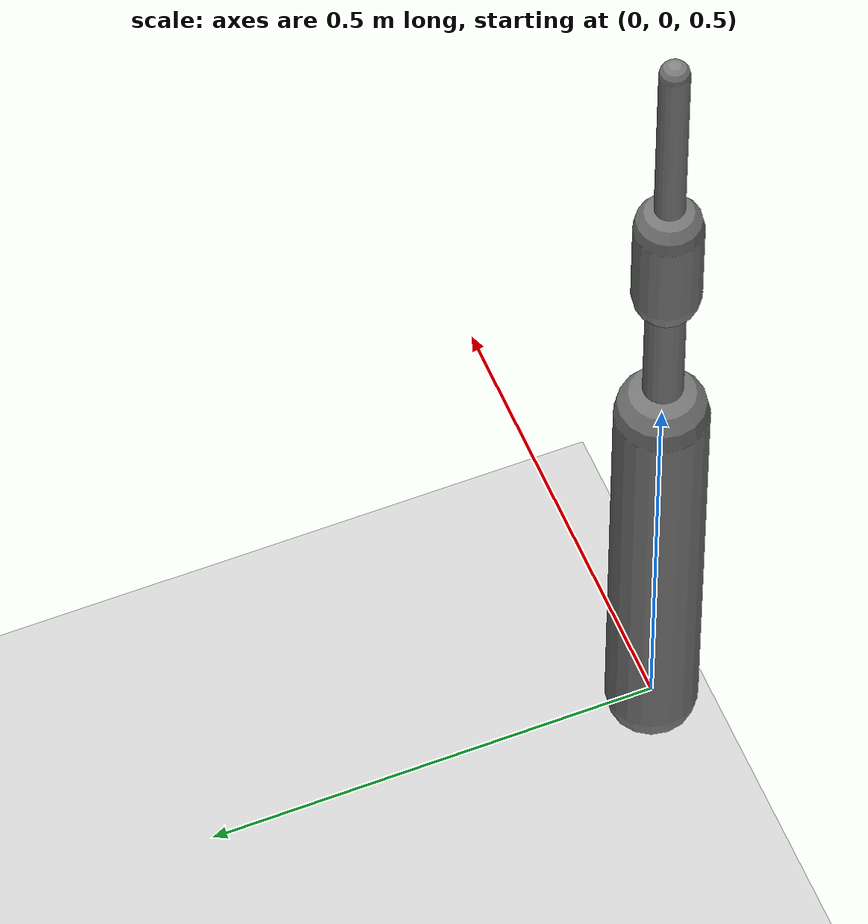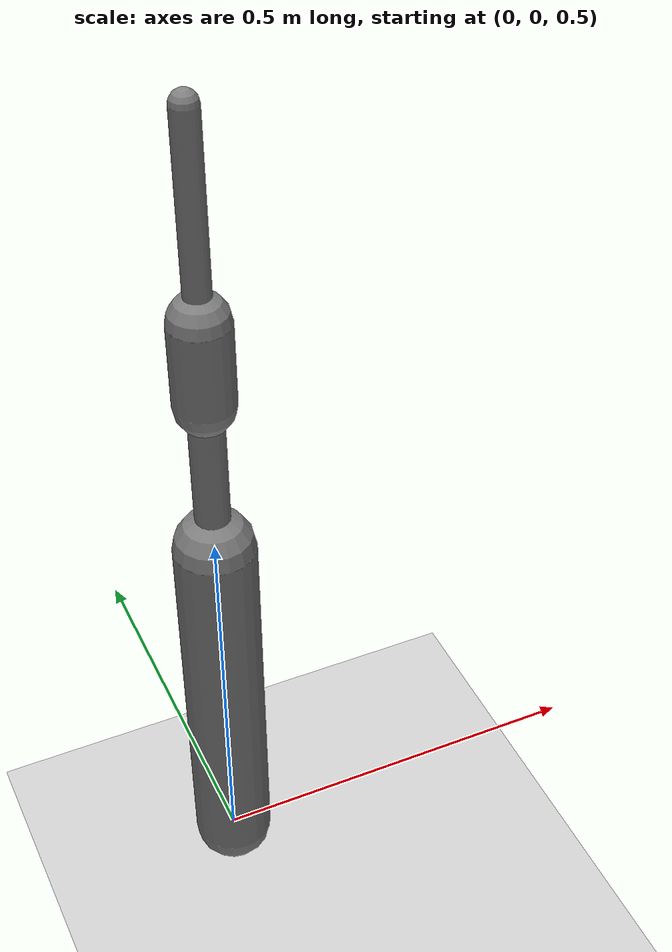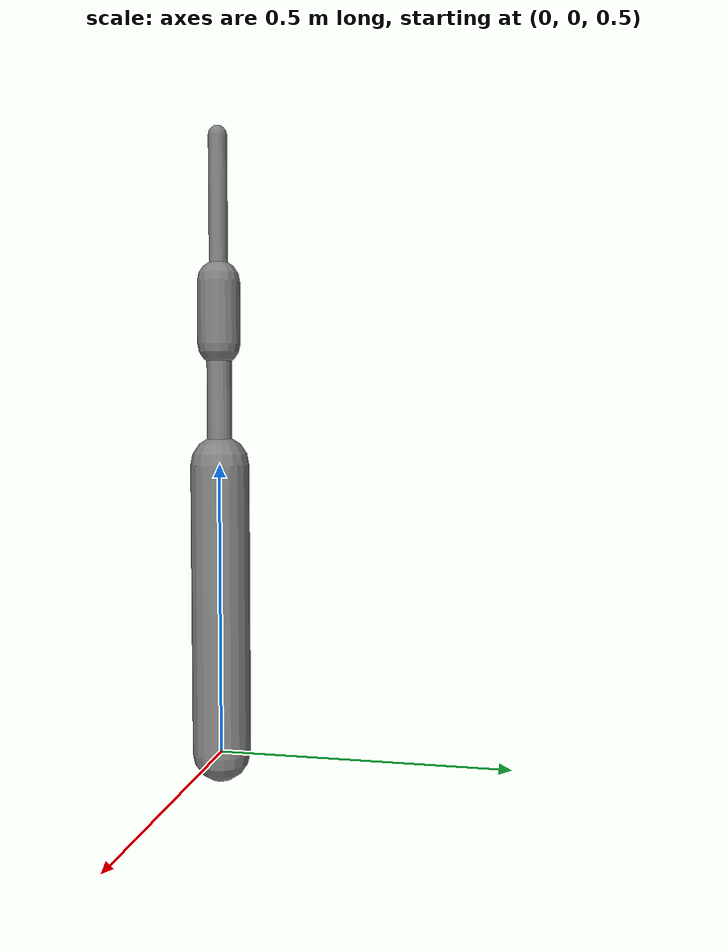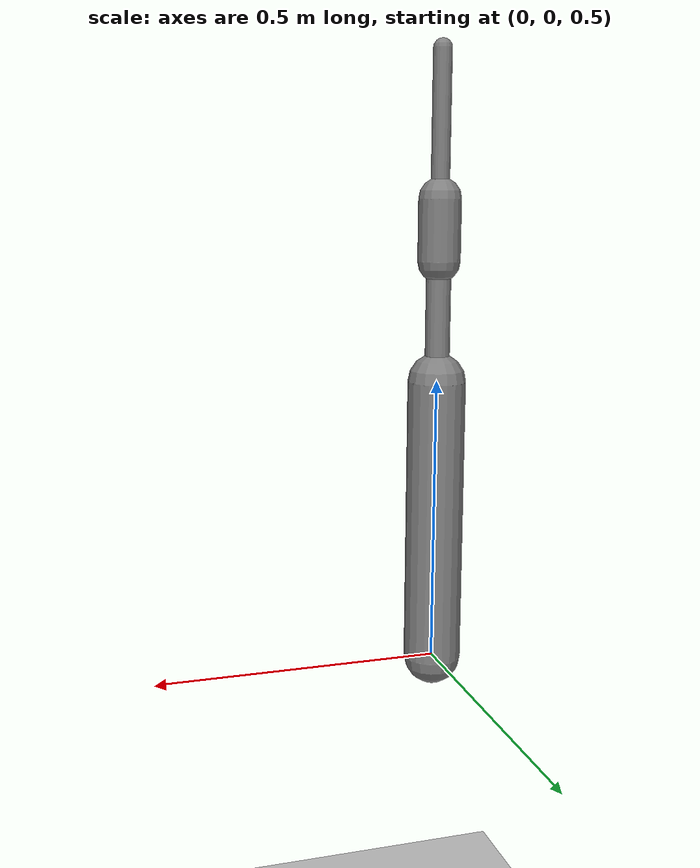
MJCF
<?xml version='1.0' encoding='UTF-8'?>
<mujoco model="RobotModel">
  <option gravity="0 0 -9.81" timestep="0.002" solver="CG" iterations="500" integrator="Euler"/>
  <worldbody>
    <geom name="Floor" type="plane" size="10 10 0.1" pos="0 0 0" rgba="0.8 0.8 0.8 1"/>
    <body name="Limb0" pos="0 0 0.5">
      <geom type="capsule" fromto="0 0 0 0 0 0.5" size="0.05" density="1000" contype="0" conaffinity="0"/>
      <body name="Limb0_f05ab128" pos="0 0 0.5">
        <geom type="capsule" fromto="0 0 0 0 0 0.12642073650697447" size="0.01960383208354277" density="800" contype="0" conaffinity="0"/>
        <joint name="Joint_Limb0_Limb0_f05ab128_0" type="hinge" axis="0 1 0" range="-60 60"/>
      </body>
      <body name="Limb1_f05ab128" pos="0 0 0.5">
        <geom type="capsule" fromto="0 0 0 0 0 0.2061127602643679" size="0.021225724659166615" density="800" contype="0" conaffinity="0"/>
        <body name="Limb2_f05ab128" pos="0 0 0.2061127602643679">
          <geom type="capsule" fromto="0 0 0 0 0 0.10547432572166344" size="0.0363335970557647" density="800" contype="0" conaffinity="0"/>
          <body name="Limb3_f05ab128" pos="0 0 0.10547432572166344">
            <geom type="capsule" fromto="0 0 0 0 0 0.2449434186500521" size="0.01592051162938016" density="800" contype="0" conaffinity="0"/>
            <joint name="Joint_Limb2_f05ab128_Limb3_f05ab128_0" type="hinge" axis="0 1 0" range="-60 60"/>
          </body>
          <joint name="Joint_Limb1_f05ab128_Limb2_f05ab128_0" type="hinge" axis="1 0 0" range="-60 60"/>
        </body>
        <joint name="Joint_Limb0_Limb1_f05ab128_0" type="hinge" axis="0 1 0" range="-60 60"/>
      </body>
    </body>
  </worldbody>
  <actuator>
    <position name="position_Actuator_Joint_Limb0_Limb0_f05ab128_0" joint="Joint_Limb0_Limb0_f05ab128_0" gear="1.0"/>
    <position name="position_Actuator_Joint_Limb0_Limb1_f05ab128_0" joint="Joint_Limb0_Limb1_f05ab128_0" gear="1.0"/>
    <position name="position_Actuator_Joint_Limb1_f05ab128_Limb2_f05ab128_0" joint="Joint_Limb1_f05ab128_Limb2_f05ab128_0" gear="1.0"/>
    <position name="position_Actuator_Joint_Limb2_f05ab128_Limb3_f05ab128_0" joint="Joint_Limb2_f05ab128_Limb3_f05ab128_0" gear="1.0"/>
  </actuator>
</mujoco>
